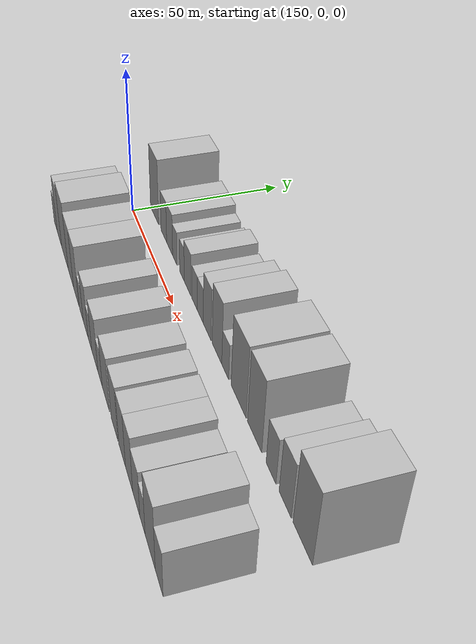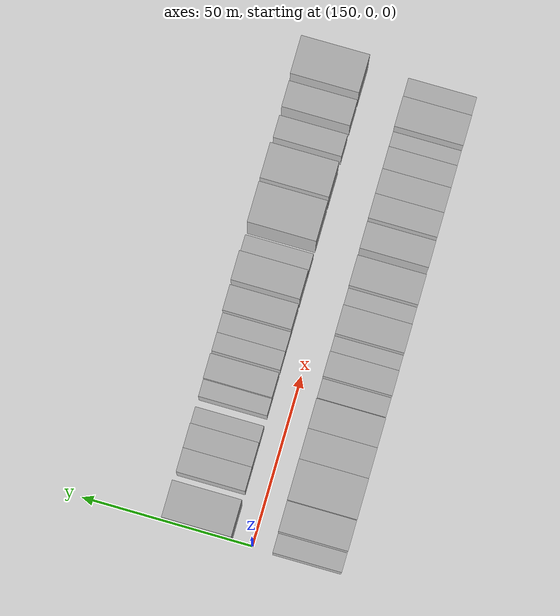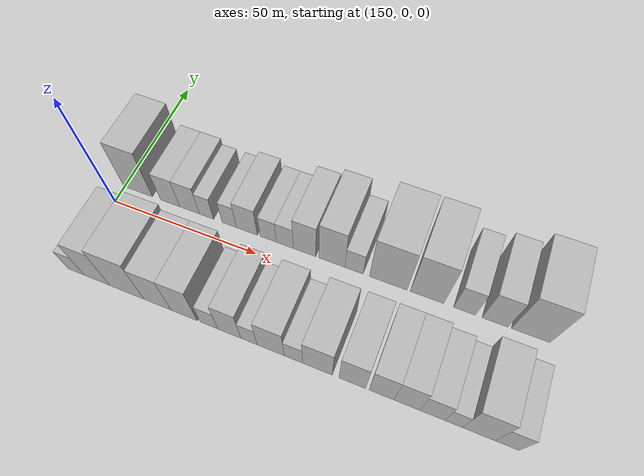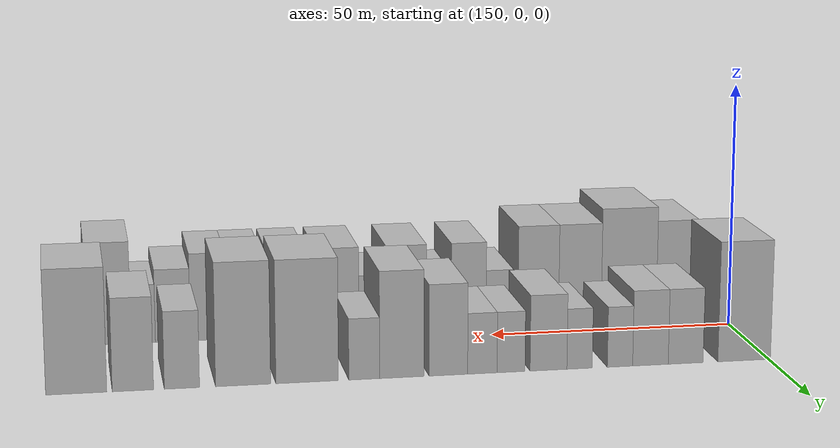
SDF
<sdf version="1.6">
 <world name="default">
  <model name="building_17">
   <static>1</static>
   <pose>155.0265 16.0000 0 0.000000 0.000000 1.570796</pose>
   <link name="link">
    <pose>0 0 12.00 0 0 0</pose>
    <collision name="collision"><geometry><box><size>20.0000 10.6728 24.0000</size></box></geometry></collision>
    <visual name="visual">
     <cast_shadows>0</cast_shadows>
     <geometry><box><size>20.0000 10.6728 24.0000</size></box></geometry>
     <material>
      <script>
       <uri>model://HANNAS_wall/materials/scripts</uri>
       <uri>model://HANNAS_wall/materials/textures</uri>
       <name>vrc/HANNAS_wall</name>
      </script>
     </material>
    </visual>
   </link>
  </model>
  <model name="building_18">
   <static>1</static>
   <pose>166.8711 16.0000 0 0.000000 0.000000 1.570796</pose>
   <link name="link">
    <pose>0 0 7.50 0 0 0</pose>
    <collision name="collision"><geometry><box><size>20.0000 7.0164 15.0000</size></box></geometry></collision>
    <visual name="visual">
     <cast_shadows>0</cast_shadows>
     <geometry><box><size>20.0000 7.0164 15.0000</size></box></geometry>
     <material>
      <script>
       <uri>model://HANNAS_wall/materials/scripts</uri>
       <uri>model://HANNAS_wall/materials/textures</uri>
       <name>vrc/HANNAS_wall</name>
      </script>
     </material>
    </visual>
   </link>
  </model>
  <model name="building_19">
   <static>1</static>
   <pose>173.9397 16.0000 0 0.000000 0.000000 1.570796</pose>
   <link name="link">
    <pose>0 0 7.50 0 0 0</pose>
    <collision name="collision"><geometry><box><size>20.0000 7.1207 15.0000</size></box></geometry></collision>
    <visual name="visual">
     <cast_shadows>0</cast_shadows>
     <geometry><box><size>20.0000 7.1207 15.0000</size></box></geometry>
     <material>
      <script>
       <uri>model://HANNAS_wall/materials/scripts</uri>
       <uri>model://HANNAS_wall/materials/textures</uri>
       <name>vrc/HANNAS_wall</name>
      </script>
     </material>
    </visual>
   </link>
  </model>
  <model name="building_20">
   <static>1</static>
   <pose>180.0243 16.0000 0 0.000000 0.000000 1.570796</pose>
   <link name="link">
    <pose>0 0 6.00 0 0 0</pose>
    <collision name="collision"><geometry><box><size>20.0000 5.0486 12.0000</size></box></geometry></collision>
    <visual name="visual">
     <cast_shadows>0</cast_shadows>
     <geometry><box><size>20.0000 5.0486 12.0000</size></box></geometry>
     <material>
      <script>
       <uri>model://HANNAS_wall/materials/scripts</uri>
       <uri>model://HANNAS_wall/materials/textures</uri>
       <name>vrc/HANNAS_wall</name>
      </script>
     </material>
    </visual>
   </link>
  </model>
  <model name="building_21">
   <static>1</static>
   <pose>188.0584 16.0000 0 0.000000 0.000000 1.570796</pose>
   <link name="link">
    <pose>0 0 6.00 0 0 0</pose>
    <collision name="collision"><geometry><box><size>20.0000 5.0195 12.0000</size></box></geometry></collision>
    <visual name="visual">
     <cast_shadows>0</cast_shadows>
     <geometry><box><size>20.0000 5.0195 12.0000</size></box></geometry>
     <material>
      <script>
       <uri>model://HANNAS_wall/materials/scripts</uri>
       <uri>model://HANNAS_wall/materials/textures</uri>
       <name>vrc/HANNAS_wall</name>
      </script>
     </material>
    </visual>
   </link>
  </model>
  <model name="building_22">
   <static>1</static>
   <pose>194.2041 16.0000 0 0.000000 0.000000 1.570796</pose>
   <link name="link">
    <pose>0 0 7.50 0 0 0</pose>
    <collision name="collision"><geometry><box><size>20.0000 7.2721 15.0000</size></box></geometry></collision>
    <visual name="visual">
     <cast_shadows>0</cast_shadows>
     <geometry><box><size>20.0000 7.2721 15.0000</size></box></geometry>
     <material>
      <script>
       <uri>model://HANNAS_wall/materials/scripts</uri>
       <uri>model://HANNAS_wall/materials/textures</uri>
       <name>vrc/HANNAS_wall</name>
      </script>
     </material>
    </visual>
   </link>
  </model>
  <model name="building_23">
   <static>1</static>
   <pose>201.5783 16.0000 0 0.000000 0.000000 1.570796</pose>
   <link name="link">
    <pose>0 0 6.00 0 0 0</pose>
    <collision name="collision"><geometry><box><size>20.0000 5.4761 12.0000</size></box></geometry></collision>
    <visual name="visual">
     <cast_shadows>0</cast_shadows>
     <geometry><box><size>20.0000 5.4761 12.0000</size></box></geometry>
     <material>
      <script>
       <uri>model://HANNAS_wall/materials/scripts</uri>
       <uri>model://HANNAS_wall/materials/textures</uri>
       <name>vrc/HANNAS_wall</name>
      </script>
     </material>
    </visual>
   </link>
  </model>
  <model name="building_24">
   <static>1</static>
   <pose>207.1888 16.0000 0 0.000000 0.000000 1.570796</pose>
   <link name="link">
    <pose>0 0 6.00 0 0 0</pose>
    <collision name="collision"><geometry><box><size>20.0000 5.7449 12.0000</size></box></geometry></collision>
    <visual name="visual">
     <cast_shadows>0</cast_shadows>
     <geometry><box><size>20.0000 5.7449 12.0000</size></box></geometry>
     <material>
      <script>
       <uri>model://HANNAS_wall/materials/scripts</uri>
       <uri>model://HANNAS_wall/materials/textures</uri>
       <name>vrc/HANNAS_wall</name>
      </script>
     </material>
    </visual>
   </link>
  </model>
  <model name="building_25">
   <static>1</static>
   <pose>213.8096 16.0000 0 0.000000 0.000000 1.570796</pose>
   <link name="link">
    <pose>0 0 9.00 0 0 0</pose>
    <collision name="collision"><geometry><box><size>20.0000 7.4967 18.0000</size></box></geometry></collision>
    <visual name="visual">
     <cast_shadows>0</cast_shadows>
     <geometry><box><size>20.0000 7.4967 18.0000</size></box></geometry>
     <material>
      <script>
       <uri>model://HANNAS_wall/materials/scripts</uri>
       <uri>model://HANNAS_wall/materials/textures</uri>
       <name>vrc/HANNAS_wall</name>
      </script>
     </material>
    </visual>
   </link>
  </model>
  <model name="building_26">
   <static>1</static>
   <pose>222.8315 16.0000 0 0.000000 0.000000 1.570796</pose>
   <link name="link">
    <pose>0 0 10.50 0 0 0</pose>
    <collision name="collision"><geometry><box><size>20.0000 8.5472 21.0000</size></box></geometry></collision>
    <visual name="visual">
     <cast_shadows>0</cast_shadows>
     <geometry><box><size>20.0000 8.5472 21.0000</size></box></geometry>
     <material>
      <script>
       <uri>model://HANNAS_wall/materials/scripts</uri>
       <uri>model://HANNAS_wall/materials/textures</uri>
       <name>vrc/HANNAS_wall</name>
      </script>
     </material>
    </visual>
   </link>
  </model>
  <model name="building_27">
   <static>1</static>
   <pose>230.0566 16.0000 0 0.000000 0.000000 1.570796</pose>
   <link name="link">
    <pose>0 0 6.00 0 0 0</pose>
    <collision name="collision"><geometry><box><size>20.0000 5.9030 12.0000</size></box></geometry></collision>
    <visual name="visual">
     <cast_shadows>0</cast_shadows>
     <geometry><box><size>20.0000 5.9030 12.0000</size></box></geometry>
     <material>
      <script>
       <uri>model://HANNAS_wall/materials/scripts</uri>
       <uri>model://HANNAS_wall/materials/textures</uri>
       <name>vrc/HANNAS_wall</name>
      </script>
     </material>
    </visual>
   </link>
  </model>
  <model name="building_28">
   <static>1</static>
   <pose>240.9556 16.0000 0 0.000000 0.000000 1.570796</pose>
   <link name="link">
    <pose>0 0 12.00 0 0 0</pose>
    <collision name="collision"><geometry><box><size>20.0000 11.8950 24.0000</size></box></geometry></collision>
    <visual name="visual">
     <cast_shadows>0</cast_shadows>
     <geometry><box><size>20.0000 11.8950 24.0000</size></box></geometry>
     <material>
      <script>
       <uri>model://HANNAS_wall/materials/scripts</uri>
       <uri>model://HANNAS_wall/materials/textures</uri>
       <name>vrc/HANNAS_wall</name>
      </script>
     </material>
    </visual>
   </link>
  </model>
  <model name="building_29">
   <static>1</static>
   <pose>253.0894 16.0000 0 0.000000 0.000000 1.570796</pose>
   <link name="link">
    <pose>0 0 12.00 0 0 0</pose>
    <collision name="collision"><geometry><box><size>20.0000 10.3726 24.0000</size></box></geometry></collision>
    <visual name="visual">
     <cast_shadows>0</cast_shadows>
     <geometry><box><size>20.0000 10.3726 24.0000</size></box></geometry>
     <material>
      <script>
       <uri>model://HANNAS_wall/materials/scripts</uri>
       <uri>model://HANNAS_wall/materials/textures</uri>
       <name>vrc/HANNAS_wall</name>
      </script>
     </material>
    </visual>
   </link>
  </model>
  <model name="building_30">
   <static>1</static>
   <pose>264.5663 16.0000 0 0.000000 0.000000 1.570796</pose>
   <link name="link">
    <pose>0 0 7.50 0 0 0</pose>
    <collision name="collision"><geometry><box><size>20.0000 6.5811 15.0000</size></box></geometry></collision>
    <visual name="visual">
     <cast_shadows>0</cast_shadows>
     <geometry><box><size>20.0000 6.5811 15.0000</size></box></geometry>
     <material>
      <script>
       <uri>model://HANNAS_wall/materials/scripts</uri>
       <uri>model://HANNAS_wall/materials/textures</uri>
       <name>vrc/HANNAS_wall</name>
      </script>
     </material>
    </visual>
   </link>
  </model>
  <model name="building_31">
   <static>1</static>
   <pose>273.6921 16.0000 0 0.000000 0.000000 1.570796</pose>
   <link name="link">
    <pose>0 0 9.00 0 0 0</pose>
    <collision name="collision"><geometry><box><size>20.0000 7.6704 18.0000</size></box></geometry></collision>
    <visual name="visual">
     <cast_shadows>0</cast_shadows>
     <geometry><box><size>20.0000 7.6704 18.0000</size></box></geometry>
     <material>
      <script>
       <uri>model://HANNAS_wall/materials/scripts</uri>
       <uri>model://HANNAS_wall/materials/textures</uri>
       <name>vrc/HANNAS_wall</name>
      </script>
     </material>
    </visual>
   </link>
  </model>
  <model name="building_32">
   <static>1</static>
   <pose>284.1521 16.0000 0 0.000000 0.000000 1.570796</pose>
   <link name="link">
    <pose>0 0 12.00 0 0 0</pose>
    <collision name="collision"><geometry><box><size>20.0000 11.2497 24.0000</size></box></geometry></collision>
    <visual name="visual">
     <cast_shadows>0</cast_shadows>
     <geometry><box><size>20.0000 11.2497 24.0000</size></box></geometry>
     <material>
      <script>
       <uri>model://HANNAS_wall/materials/scripts</uri>
       <uri>model://HANNAS_wall/materials/textures</uri>
       <name>vrc/HANNAS_wall</name>
      </script>
     </material>
    </visual>
   </link>
  </model>
  <model name="building_48">
   <static>1</static>
   <pose>152.1213 -16.0000 0 0.000000 0.000000 1.570796</pose>
   <link name="link">
    <pose>0 0 6.00 0 0 0</pose>
    <collision name="collision"><geometry><box><size>20.0000 5.6595 12.0000</size></box></geometry></collision>
    <visual name="visual">
     <cast_shadows>0</cast_shadows>
     <geometry><box><size>20.0000 5.6595 12.0000</size></box></geometry>
     <material>
      <script>
       <uri>model://HANNAS_wall/materials/scripts</uri>
       <uri>model://HANNAS_wall/materials/textures</uri>
       <name>vrc/HANNAS_wall</name>
      </script>
     </material>
    </visual>
   </link>
  </model>
  <model name="building_49">
   <static>1</static>
   <pose>159.3857 -16.0000 0 0.000000 0.000000 1.570796</pose>
   <link name="link">
    <pose>0 0 10.50 0 0 0</pose>
    <collision name="collision"><geometry><box><size>20.0000 8.8694 21.0000</size></box></geometry></collision>
    <visual name="visual">
     <cast_shadows>0</cast_shadows>
     <geometry><box><size>20.0000 8.8694 21.0000</size></box></geometry>
     <material>
      <script>
       <uri>model://HANNAS_wall/materials/scripts</uri>
       <uri>model://HANNAS_wall/materials/textures</uri>
       <name>vrc/HANNAS_wall</name>
      </script>
     </material>
    </visual>
   </link>
  </model>
  <model name="building_50">
   <static>1</static>
   <pose>169.7252 -16.0000 0 0.000000 0.000000 1.570796</pose>
   <link name="link">
    <pose>0 0 12.00 0 0 0</pose>
    <collision name="collision"><geometry><box><size>20.0000 11.8097 24.0000</size></box></geometry></collision>
    <visual name="visual">
     <cast_shadows>0</cast_shadows>
     <geometry><box><size>20.0000 11.8097 24.0000</size></box></geometry>
     <material>
      <script>
       <uri>model://HANNAS_wall/materials/scripts</uri>
       <uri>model://HANNAS_wall/materials/textures</uri>
       <name>vrc/HANNAS_wall</name>
      </script>
     </material>
    </visual>
   </link>
  </model>
  <model name="building_51">
   <static>1</static>
   <pose>180.1610 -16.0000 0 0.000000 0.000000 1.570796</pose>
   <link name="link">
    <pose>0 0 10.50 0 0 0</pose>
    <collision name="collision"><geometry><box><size>20.0000 9.0619 21.0000</size></box></geometry></collision>
    <visual name="visual">
     <cast_shadows>0</cast_shadows>
     <geometry><box><size>20.0000 9.0619 21.0000</size></box></geometry>
     <material>
      <script>
       <uri>model://HANNAS_wall/materials/scripts</uri>
       <uri>model://HANNAS_wall/materials/textures</uri>
       <name>vrc/HANNAS_wall</name>
      </script>
     </material>
    </visual>
   </link>
  </model>
  <model name="building_52">
   <static>1</static>
   <pose>188.9930 -16.0000 0 0.000000 0.000000 1.570796</pose>
   <link name="link">
    <pose>0 0 10.50 0 0 0</pose>
    <collision name="collision"><geometry><box><size>20.0000 8.6021 21.0000</size></box></geometry></collision>
    <visual name="visual">
     <cast_shadows>0</cast_shadows>
     <geometry><box><size>20.0000 8.6021 21.0000</size></box></geometry>
     <material>
      <script>
       <uri>model://HANNAS_wall/materials/scripts</uri>
       <uri>model://HANNAS_wall/materials/textures</uri>
       <name>vrc/HANNAS_wall</name>
      </script>
     </material>
    </visual>
   </link>
  </model>
  <model name="building_53">
   <static>1</static>
   <pose>197.1399 -16.0000 0 0.000000 0.000000 1.570796</pose>
   <link name="link">
    <pose>0 0 6.00 0 0 0</pose>
    <collision name="collision"><geometry><box><size>20.0000 5.6916 12.0000</size></box></geometry></collision>
    <visual name="visual">
     <cast_shadows>0</cast_shadows>
     <geometry><box><size>20.0000 5.6916 12.0000</size></box></geometry>
     <material>
      <script>
       <uri>model://HANNAS_wall/materials/scripts</uri>
       <uri>model://HANNAS_wall/materials/textures</uri>
       <name>vrc/HANNAS_wall</name>
      </script>
     </material>
    </visual>
   </link>
  </model>
  <model name="building_54">
   <static>1</static>
   <pose>203.6494 -16.0000 0 0.000000 0.000000 1.570796</pose>
   <link name="link">
    <pose>0 0 9.00 0 0 0</pose>
    <collision name="collision"><geometry><box><size>20.0000 7.3275 18.0000</size></box></geometry></collision>
    <visual name="visual">
     <cast_shadows>0</cast_shadows>
     <geometry><box><size>20.0000 7.3275 18.0000</size></box></geometry>
     <material>
      <script>
       <uri>model://HANNAS_wall/materials/scripts</uri>
       <uri>model://HANNAS_wall/materials/textures</uri>
       <name>vrc/HANNAS_wall</name>
      </script>
     </material>
    </visual>
   </link>
  </model>
  <model name="building_55">
   <static>1</static>
   <pose>209.8649 -16.0000 0 0.000000 0.000000 1.570796</pose>
   <link name="link">
    <pose>0 0 6.00 0 0 0</pose>
    <collision name="collision"><geometry><box><size>20.0000 5.1036 12.0000</size></box></geometry></collision>
    <visual name="visual">
     <cast_shadows>0</cast_shadows>
     <geometry><box><size>20.0000 5.1036 12.0000</size></box></geometry>
     <material>
      <script>
       <uri>model://HANNAS_wall/materials/scripts</uri>
       <uri>model://HANNAS_wall/materials/textures</uri>
       <name>vrc/HANNAS_wall</name>
      </script>
     </material>
    </visual>
   </link>
  </model>
  <model name="building_56">
   <static>1</static>
   <pose>216.6293 -16.0000 0 0.000000 0.000000 1.570796</pose>
   <link name="link">
    <pose>0 0 9.00 0 0 0</pose>
    <collision name="collision"><geometry><box><size>20.0000 8.4251 18.0000</size></box></geometry></collision>
    <visual name="visual">
     <cast_shadows>0</cast_shadows>
     <geometry><box><size>20.0000 8.4251 18.0000</size></box></geometry>
     <material>
      <script>
       <uri>model://HANNAS_wall/materials/scripts</uri>
       <uri>model://HANNAS_wall/materials/textures</uri>
       <name>vrc/HANNAS_wall</name>
      </script>
     </material>
    </visual>
   </link>
  </model>
  <model name="building_57">
   <static>1</static>
   <pose>223.6506 -16.0000 0 0.000000 0.000000 1.570796</pose>
   <link name="link">
    <pose>0 0 6.00 0 0 0</pose>
    <collision name="collision"><geometry><box><size>20.0000 5.6175 12.0000</size></box></geometry></collision>
    <visual name="visual">
     <cast_shadows>0</cast_shadows>
     <geometry><box><size>20.0000 5.6175 12.0000</size></box></geometry>
     <material>
      <script>
       <uri>model://HANNAS_wall/materials/scripts</uri>
       <uri>model://HANNAS_wall/materials/textures</uri>
       <name>vrc/HANNAS_wall</name>
      </script>
     </material>
    </visual>
   </link>
  </model>
  <model name="building_58">
   <static>1</static>
   <pose>230.9170 -16.0000 0 0.000000 0.000000 1.570796</pose>
   <link name="link">
    <pose>0 0 9.00 0 0 0</pose>
    <collision name="collision"><geometry><box><size>20.0000 8.9152 18.0000</size></box></geometry></collision>
    <visual name="visual">
     <cast_shadows>0</cast_shadows>
     <geometry><box><size>20.0000 8.9152 18.0000</size></box></geometry>
     <material>
      <script>
       <uri>model://HANNAS_wall/materials/scripts</uri>
       <uri>model://HANNAS_wall/materials/textures</uri>
       <name>vrc/HANNAS_wall</name>
      </script>
     </material>
    </visual>
   </link>
  </model>
  <model name="building_59">
   <static>1</static>
   <pose>241.3000 -16.0000 0 0.000000 0.000000 1.570796</pose>
   <link name="link">
    <pose>0 0 9.00 0 0 0</pose>
    <collision name="collision"><geometry><box><size>20.0000 7.8509 18.0000</size></box></geometry></collision>
    <visual name="visual">
     <cast_shadows>0</cast_shadows>
     <geometry><box><size>20.0000 7.8509 18.0000</size></box></geometry>
     <material>
      <script>
       <uri>model://HANNAS_wall/materials/scripts</uri>
       <uri>model://HANNAS_wall/materials/textures</uri>
       <name>vrc/HANNAS_wall</name>
      </script>
     </material>
    </visual>
   </link>
  </model>
  <model name="building_60">
   <static>1</static>
   <pose>249.8479 -16.0000 0 0.000000 0.000000 1.570796</pose>
   <link name="link">
    <pose>0 0 9.00 0 0 0</pose>
    <collision name="collision"><geometry><box><size>20.0000 7.2447 18.0000</size></box></geometry></collision>
    <visual name="visual">
     <cast_shadows>0</cast_shadows>
     <geometry><box><size>20.0000 7.2447 18.0000</size></box></geometry>
     <material>
      <script>
       <uri>model://HANNAS_wall/materials/scripts</uri>
       <uri>model://HANNAS_wall/materials/textures</uri>
       <name>vrc/HANNAS_wall</name>
      </script>
     </material>
    </visual>
   </link>
  </model>
  <model name="building_61">
   <static>1</static>
   <pose>257.1245 -16.0000 0 0.000000 0.000000 1.570796</pose>
   <link name="link">
    <pose>0 0 9.00 0 0 0</pose>
    <collision name="collision"><geometry><box><size>20.0000 7.3087 18.0000</size></box></geometry></collision>
    <visual name="visual">
     <cast_shadows>0</cast_shadows>
     <geometry><box><size>20.0000 7.3087 18.0000</size></box></geometry>
     <material>
      <script>
       <uri>model://HANNAS_wall/materials/scripts</uri>
       <uri>model://HANNAS_wall/materials/textures</uri>
       <name>vrc/HANNAS_wall</name>
      </script>
     </material>
    </visual>
   </link>
  </model>
  <model name="building_62">
   <static>1</static>
   <pose>264.2841 -16.0000 0 0.000000 0.000000 1.570796</pose>
   <link name="link">
    <pose>0 0 7.50 0 0 0</pose>
    <collision name="collision"><geometry><box><size>20.0000 7.0104 15.0000</size></box></geometry></collision>
    <visual name="visual">
     <cast_shadows>0</cast_shadows>
     <geometry><box><size>20.0000 7.0104 15.0000</size></box></geometry>
     <material>
      <script>
       <uri>model://HANNAS_wall/materials/scripts</uri>
       <uri>model://HANNAS_wall/materials/textures</uri>
       <name>vrc/HANNAS_wall</name>
      </script>
     </material>
    </visual>
   </link>
  </model>
  <model name="building_63">
   <static>1</static>
   <pose>270.2321 -16.0000 0 0.000000 0.000000 1.570796</pose>
   <link name="link">
    <pose>0 0 6.00 0 0 0</pose>
    <collision name="collision"><geometry><box><size>20.0000 4.8855 12.0000</size></box></geometry></collision>
    <visual name="visual">
     <cast_shadows>0</cast_shadows>
     <geometry><box><size>20.0000 4.8855 12.0000</size></box></geometry>
     <material>
      <script>
       <uri>model://HANNAS_wall/materials/scripts</uri>
       <uri>model://HANNAS_wall/materials/textures</uri>
       <name>vrc/HANNAS_wall</name>
      </script>
     </material>
    </visual>
   </link>
  </model>
  <model name="building_64">
   <static>1</static>
   <pose>277.1286 -16.0000 0 0.000000 0.000000 1.570796</pose>
   <link name="link">
    <pose>0 0 10.50 0 0 0</pose>
    <collision name="collision"><geometry><box><size>20.0000 8.9074 21.0000</size></box></geometry></collision>
    <visual name="visual">
     <cast_shadows>0</cast_shadows>
     <geometry><box><size>20.0000 8.9074 21.0000</size></box></geometry>
     <material>
      <script>
       <uri>model://HANNAS_wall/materials/scripts</uri>
       <uri>model://HANNAS_wall/materials/textures</uri>
       <name>vrc/HANNAS_wall</name>
      </script>
     </material>
    </visual>
   </link>
  </model>
  <model name="building_65">
   <static>1</static>
   <pose>284.8036 -16.0000 0 0.000000 0.000000 1.570796</pose>
   <link name="link">
    <pose>0 0 7.50 0 0 0</pose>
    <collision name="collision"><geometry><box><size>20.0000 6.4427 15.0000</size></box></geometry></collision>
    <visual name="visual">
     <cast_shadows>0</cast_shadows>
     <geometry><box><size>20.0000 6.4427 15.0000</size></box></geometry>
     <material>
      <script>
       <uri>model://HANNAS_wall/materials/scripts</uri>
       <uri>model://HANNAS_wall/materials/textures</uri>
       <name>vrc/HANNAS_wall</name>
      </script>
     </material>
    </visual>
   </link>
  </model>
 </world>
</sdf>
